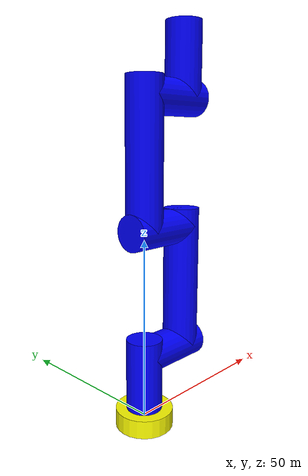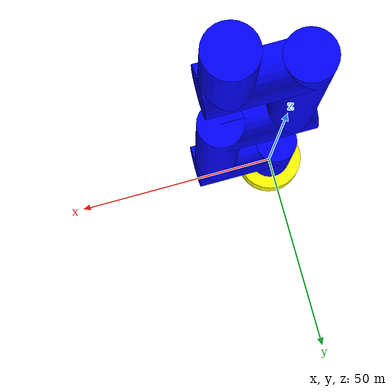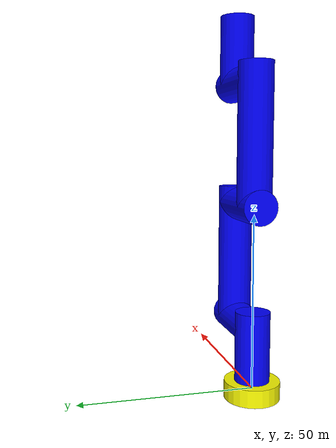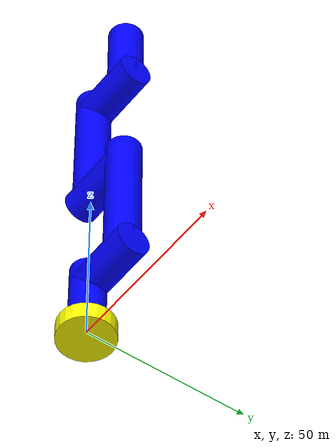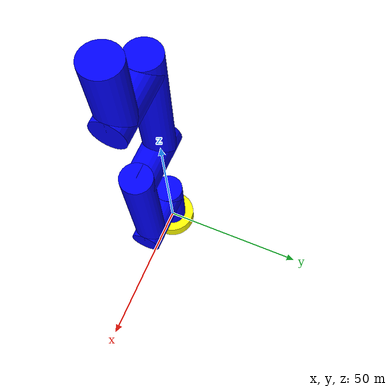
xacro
<?xml version="1.0"?>

<robot name="kukaiiwa" xmlns:xacro="http://wiki.ros.org/xacro">
    <xacro:include filename="$(find kukaiiwa_xacro)/urdf/kukaiiwa_macro.xacro" />

		<!-- base link -->
		<xacro:base_link_macro
			base_link_name="base_link">
		</xacro:base_link_macro>

		<!-- first joint -->
		<xacro:kukaiiwa_joint
			name="first_joint"
			type="revolute"
			parent="base_link"
			child="first_link">
			<origin xyz="0 0 0" />
			<axis xyz="0 0 1"/>
			<limit effort="176" velocity="1.96" lower="-2.97" upper="2.97" /> <!-- effort in Nm, velocity in rad/s lower e upper in rad -->
		</xacro:kukaiiwa_joint>

		<!-- first link-->
		<xacro:kukaiiwa_link name="first_link">
			<geometry>
				<cylinder length="20" radius="5"/>
			</geometry>
			<origin xyz="0 0 12.5" rpy="0 0 0"/>
		</xacro:kukaiiwa_link>

		<!-- second joint -->
		<xacro:kukaiiwa_joint
			name="second_joint"
			type="revolute"
			parent="first_link"
			child="second_link">
			<origin xyz="0 0 17.5"/>
			<axis xyz="1 0 0"/>
			<limit effort="176" velocity="1.96" lower="-2.09" upper="2.09" />
		</xacro:kukaiiwa_joint>

		<!-- second link -->
		<xacro:kukaiiwa_link name="second_link">
			<geometry>
				<cylinder length="20" radius="5"/>
			</geometry>
			<origin xyz="10 0 0" rpy="0 1.57 0"/>
		</xacro:kukaiiwa_link>

		<!-- third joint -->
		<xacro:kukaiiwa_joint
			name="third_joint"
			type="revolute"
			parent="second_link"
			child="third_link">
			<origin xyz="15 0 0"/>
			<axis xyz="0 0 1"/>
			<limit effort="110" velocity="2" lower="-2.97" upper="2.97" />
		</xacro:kukaiiwa_joint>

		<!-- third link  -->
		<xacro:kukaiiwa_link name="third_link">
			<geometry>
				<cylinder length="40" radius="5"/>
			</geometry>
			<origin xyz="0 0 20" rpy="0 0 0"/>
		</xacro:kukaiiwa_link>

		<!-- fourth joint -->
		<xacro:kukaiiwa_joint
			name="forth_joint"
			type="revolute"
			parent="third_link"
			child="fourth_link">
			<origin xyz="0 0 35"/>
			<axis xyz="1 0 0"/>
			<limit effort="110" velocity="2.6" lower="-2.09" upper="2.09" />
		</xacro:kukaiiwa_joint>

		<!-- fourth link -->
		<xacro:kukaiiwa_link name="fourth_link">
			<geometry>
				<cylinder length="20" radius="5"/>
			</geometry>
			<origin xyz="-10 0 0" rpy="0 1.57 0"/>
		</xacro:kukaiiwa_link>

		<!-- fifth joint -->
		<xacro:kukaiiwa_joint
			name="fifth_joint"
			type="revolute"
			parent="fourth_link"
			child="fifth_link">
			<origin xyz="-15 0 0"/>
			<axis xyz="0 0 1"/>
			<limit effort="110" velocity="2.8" lower="-2.97" upper="2.97" />
		</xacro:kukaiiwa_joint>

		<!-- fifth link -->
		<xacro:kukaiiwa_link name="fifth_link">
			<geometry>
				<cylinder length="40" radius="5"/>
			</geometry>
			<origin xyz="0 0 20" rpy="0 0 0"/>
		</xacro:kukaiiwa_link>

		<!-- sixth joint -->
		<xacro:kukaiiwa_joint
			name="sixth_joint"
			type="revolute"
			parent="fifth_link"
			child="sixth_link">
			<origin xyz="0 0 35"/>
			<axis xyz="1 0 0"/>
			<limit effort="40" velocity="3.6" lower="-2.09" upper="2.09" />
		</xacro:kukaiiwa_joint>

		<!-- sixth link -->
		<xacro:kukaiiwa_link name="sixth_link">
			<geometry>
				<cylinder length="20" radius="5"/>
			</geometry>
			<origin xyz="10 0 0" rpy="0 1.57 0"/>
		</xacro:kukaiiwa_link>

		<!-- seventh joint -->
		<xacro:kukaiiwa_joint
			name="seventh_joint"
			type="revolute"
			parent="sixth_link"
			child="seventh_link">
			<origin xyz="15 0 0"/>
			<axis xyz="0 0 1"/>
			<limit effort="40" velocity="3.6" lower="-3.05" upper="3.05" />
		</xacro:kukaiiwa_joint>

		<!-- seventh link -->
		<xacro:kukaiiwa_link name="seventh_link">
			<geometry>
				<cylinder length="20" radius="5"/>
			</geometry>
			<origin xyz="0 0 10" rpy="0 0 0"/>
		</xacro:kukaiiwa_link>

</robot>

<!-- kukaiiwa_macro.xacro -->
<robot name="kukaiwaa_macro" xmlns:xacro="http://wiki.ros.org/xacro">

	<xacro:macro name="base_link_macro" params="base_link_name">
		<link name="${base_link_name}">
			<visual>
				<geometry>
					<cylinder length="5" radius="8"/>
				</geometry>
				<origin rpy="0 0 0" xyz="0 0 0"/>
				<material name="yellow">
					<color rgba="1 1 0 1"/>
				</material>
			</visual>
			<collision>
				<geometry>
					<cylinder length="5" radius="8"/>
				</geometry>
				<origin rpy="0 0 0" xyz="0 0 0"/>
			</collision>
			<inertial>
				<mass value="1"/>
				<inertia ixx="1.0" ixy="0.0" ixz="0.0" iyy="1.0" iyz="0.0" izz="1.0"/>
			</inertial>
		</link>
	</xacro:macro>

	<xacro:macro name="kukaiiwa_joint" params="name type parent child *origin *axis *limit">
		<joint name="${name}" type="${type}">
			<parent link="${parent}" />
			<child link="${child}" />
	   		<xacro:insert_block name="origin" />
			<xacro:insert_block name="axis" />
			<xacro:insert_block name="limit"/>
			<dynamics damping="50" friction="1"/>
		</joint>
	</xacro:macro>

	<xacro:macro name="kukaiiwa_link" params="name *geometry *origin">
		<link name="${name}">
			<visual>
				<xacro:insert_block name="geometry" />
				<xacro:insert_block name="origin" />
				<material name="red">
				  <color rgba="0 0 1 1"/>
				</material>
			</visual>
			<collision>
				<xacro:insert_block name="geometry" />
				<xacro:insert_block name="origin" />
			</collision>
			<inertial>
				<mass value="1"/>
				<inertia ixx="1.0" ixy="0.0" ixz="0.0" iyy="1.0" iyz="0.0" izz="1.0"/>
			</inertial>
		</link>
	</xacro:macro>

</robot>
